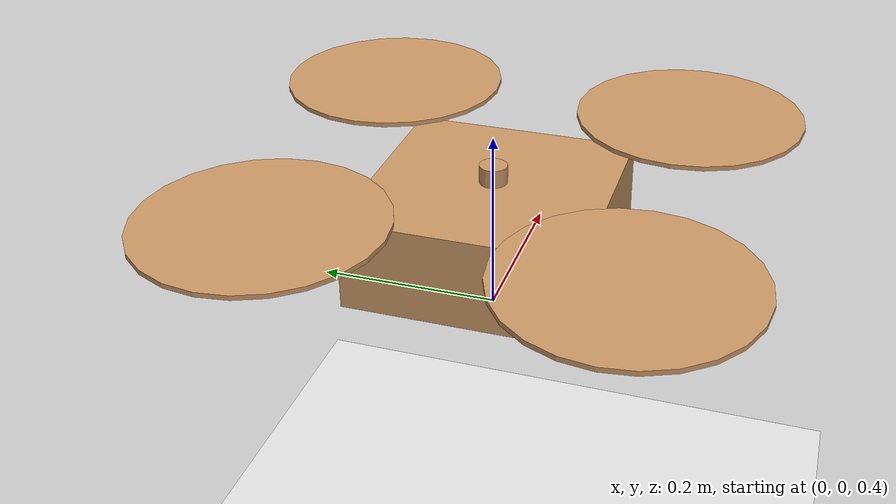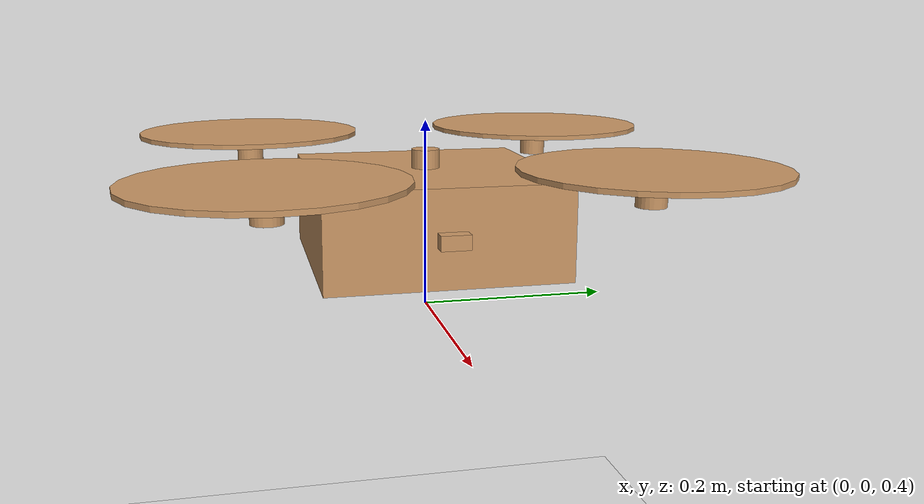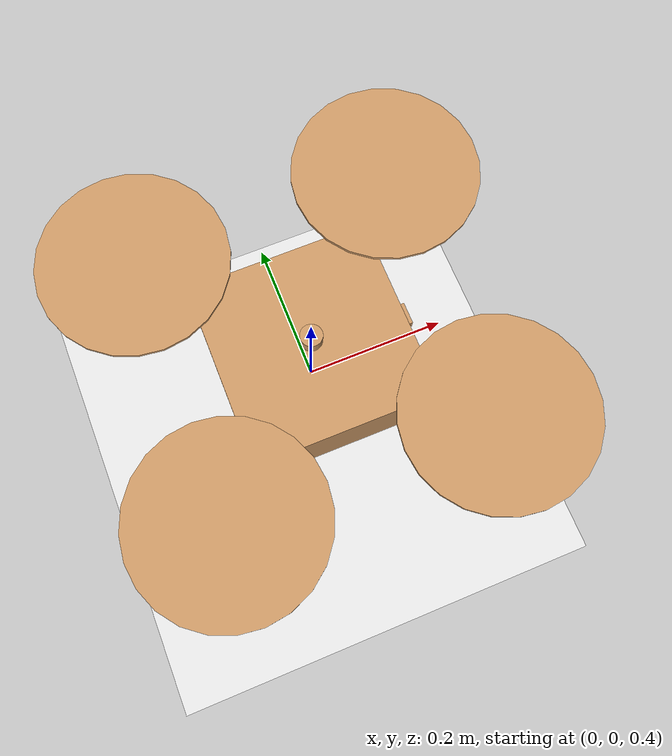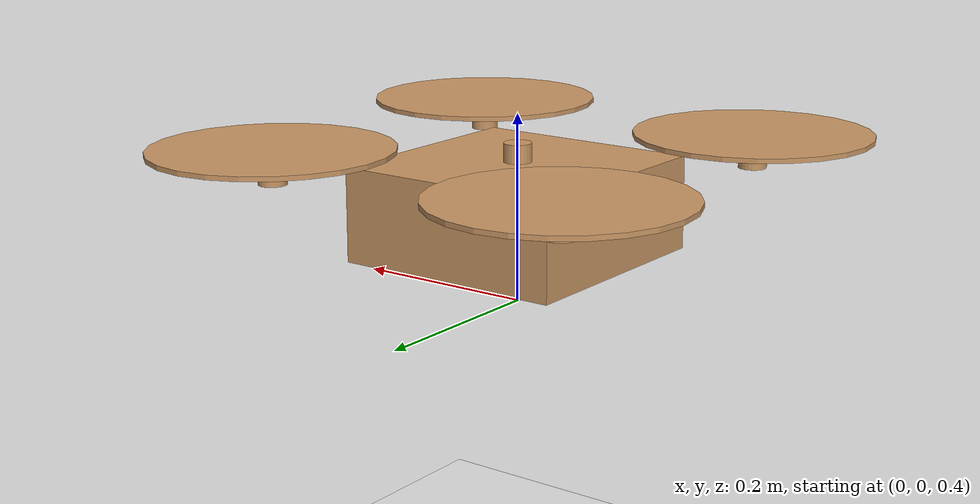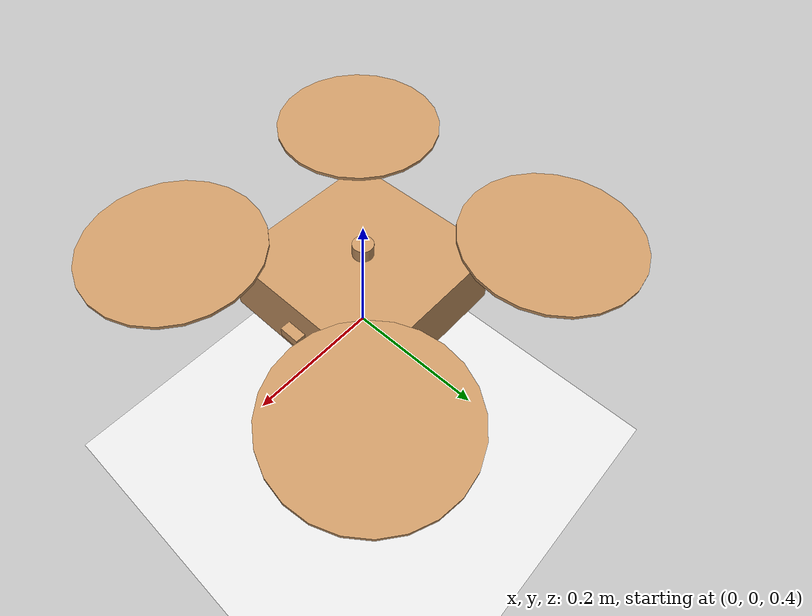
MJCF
<?xml version='1.0' encoding='utf-8'?>
<mujoco model="quadcopter_drone">
  <compiler angle="radian" meshdir="D:\ROS2_PROJECT\robotstudio\examples\quadcopter_drone\meshes" autolimits="true" />
  <option timestep="0.001" gravity="0 0 -9.81" />
  <default>
    <geom rgba="0.8 0.6 0.4 1" friction="1 0.5 0.5" />
  </default>
  <asset>
    <material name="body_color" rgba="0.1 0.1 0.1 1.0" />
    <material name="sensor_color" rgba="0.8 0.2 0.2 1.0" />
    <material name="gps_color" rgba="0.2 0.8 0.2 1.0" />
    <material name="motor_color" rgba="0.3 0.3 0.3 1.0" />
    <material name="prop_color" rgba="0.9 0.9 0.9 0.8" />
    <material name="camera_color" rgba="0.2 0.2 0.8 1.0" />
  </asset>
  <worldbody>
    <light diffuse="0.5 0.5 0.5" pos="0 0 3" dir="0 0 -1" />
    <geom name="floor" type="plane" size="0 0 1" rgba="0.9 0.9 0.9 1" />
    <body name="base_link" pos="0 0 0.5">
      <freejoint name="base_link_freejoint" />
      <inertial mass="1.0" pos="0 0 0" fullinertia="0.0104 0.0104 0.0208 0.0 0.0 0.0" />
      <geom name="base_link_visual" type="box" group="0" pos="0 0 0" size="0.125 0.125 0.05" material="body_color" />
      <geom name="base_link_collision" type="box" group="3" rgba="0.5 0.5 0.5 0.3" pos="0 0 0" size="0.125 0.125 0.05" />
      <body name="imu_link" pos="0 0 0">
        <inertial mass="0.01" pos="0 0 0" fullinertia="0.00001 0.00001 0.00001 0.0 0.0 0.0" />
        <geom name="imu_link_visual" type="box" group="0" pos="0 0 0" size="0.01 0.01 0.005" material="sensor_color" />
        <geom name="imu_link_collision" type="box" group="3" rgba="0.5 0.5 0.5 0.3" pos="0 0 0" size="0.01 0.01 0.005" />
      </body>
      <body name="gps_link" pos="0 0 0.06">
        <inertial mass="0.01" pos="0 0 0" fullinertia="0.00001 0.00001 0.00001 0.0 0.0 0.0" />
        <geom name="gps_link_visual" type="cylinder" group="0" pos="0 0 0" size="0.015 0.01" material="gps_color" />
        <geom name="gps_link_collision" type="cylinder" group="3" rgba="0.5 0.5 0.5 0.3" pos="0 0 0" size="0.015 0.01" />
      </body>
      <body name="rotor_1_link" pos="0.177 0.177 0.05" quat="0.9239556994702721 0.0 0.0 0.3824994972760097">
        <joint name="rotor_1_joint" type="hinge" axis="0 0 1" damping="0.01" frictionloss="0.001" />
        <inertial mass="0.12" pos="0 0 0.015" fullinertia="0.0001 0.0001 0.0002 0.0 0.0 0.0" />
        <geom name="rotor_1_link_visual" type="cylinder" group="0" pos="0 0 0" size="0.015 0.015" material="motor_color" />
        <geom name="rotor_1_link_visual_1" type="cylinder" group="0" pos="0 0 0.02" size="0.127 0.0025" material="prop_color" />
        <geom name="rotor_1_link_collision" type="cylinder" group="3" rgba="0.5 0.5 0.5 0.3" pos="0 0 0" size="0.015 0.015" />
      </body>
      <body name="rotor_2_link" pos="0.177 -0.177 0.05" quat="0.9239556994702721 0.0 0.0 -0.3824994972760097">
        <joint name="rotor_2_joint" type="hinge" axis="0 0 1" damping="0.01" frictionloss="0.001" />
        <inertial mass="0.12" pos="0 0 0.015" fullinertia="0.0001 0.0001 0.0002 0.0 0.0 0.0" />
        <geom name="rotor_2_link_visual" type="cylinder" group="0" pos="0 0 0" size="0.015 0.015" material="motor_color" />
        <geom name="rotor_2_link_visual_1" type="cylinder" group="0" pos="0 0 0.02" size="0.127 0.0025" material="prop_color" />
        <geom name="rotor_2_link_collision" type="cylinder" group="3" rgba="0.5 0.5 0.5 0.3" pos="0 0 0" size="0.015 0.015" />
      </body>
      <body name="rotor_3_link" pos="-0.177 -0.177 0.05" quat="0.38277327330949534 0.0 0.0 -0.9238423140557778">
        <joint name="rotor_3_joint" type="hinge" axis="0 0 1" damping="0.01" frictionloss="0.001" />
        <inertial mass="0.12" pos="0 0 0.015" fullinertia="0.0001 0.0001 0.0002 0.0 0.0 0.0" />
        <geom name="rotor_3_link_visual" type="cylinder" group="0" pos="0 0 0" size="0.015 0.015" material="motor_color" />
        <geom name="rotor_3_link_visual_1" type="cylinder" group="0" pos="0 0 0.02" size="0.127 0.0025" material="prop_color" />
        <geom name="rotor_3_link_collision" type="cylinder" group="3" rgba="0.5 0.5 0.5 0.3" pos="0 0 0" size="0.015 0.015" />
      </body>
      <body name="rotor_4_link" pos="-0.177 0.177 0.05" quat="0.38277327330949534 0.0 0.0 0.9238423140557778">
        <joint name="rotor_4_joint" type="hinge" axis="0 0 1" damping="0.01" frictionloss="0.001" />
        <inertial mass="0.12" pos="0 0 0.015" fullinertia="0.0001 0.0001 0.0002 0.0 0.0 0.0" />
        <geom name="rotor_4_link_visual" type="cylinder" group="0" pos="0 0 0" size="0.015 0.015" material="motor_color" />
        <geom name="rotor_4_link_visual_1" type="cylinder" group="0" pos="0 0 0.02" size="0.127 0.0025" material="prop_color" />
        <geom name="rotor_4_link_collision" type="cylinder" group="3" rgba="0.5 0.5 0.5 0.3" pos="0 0 0" size="0.015 0.015" />
      </body>
      <body name="camera_link" pos="0.13 0 0">
        <inertial mass="0.01" pos="0 0 0" fullinertia="0.00001 0.00001 0.00001 0.0 0.0 0.0" />
        <geom name="camera_link_visual" type="box" group="0" pos="0 0 0" size="0.01 0.015 0.0075" material="camera_color" />
        <geom name="camera_link_collision" type="box" group="3" rgba="0.5 0.5 0.5 0.3" pos="0 0 0" size="0.01 0.015 0.0075" />
      </body>
    </body>
  </worldbody>
  <actuator>
    <position name="rotor_1_joint_motor" joint="rotor_1_joint" kp="10" ctrlrange="-10.0 10.0" />
    <position name="rotor_2_joint_motor" joint="rotor_2_joint" kp="10" ctrlrange="-10.0 10.0" />
    <position name="rotor_3_joint_motor" joint="rotor_3_joint" kp="10" ctrlrange="-10.0 10.0" />
    <position name="rotor_4_joint_motor" joint="rotor_4_joint" kp="10" ctrlrange="-10.0 10.0" />
  </actuator>
  <sensor>
    <jointpos name="rotor_1_joint_pos" joint="rotor_1_joint" />
    <jointvel name="rotor_1_joint_vel" joint="rotor_1_joint" />
    <jointpos name="rotor_2_joint_pos" joint="rotor_2_joint" />
    <jointvel name="rotor_2_joint_vel" joint="rotor_2_joint" />
    <jointpos name="rotor_3_joint_pos" joint="rotor_3_joint" />
    <jointvel name="rotor_3_joint_vel" joint="rotor_3_joint" />
    <jointpos name="rotor_4_joint_pos" joint="rotor_4_joint" />
    <jointvel name="rotor_4_joint_vel" joint="rotor_4_joint" />
  </sensor>
</mujoco>
